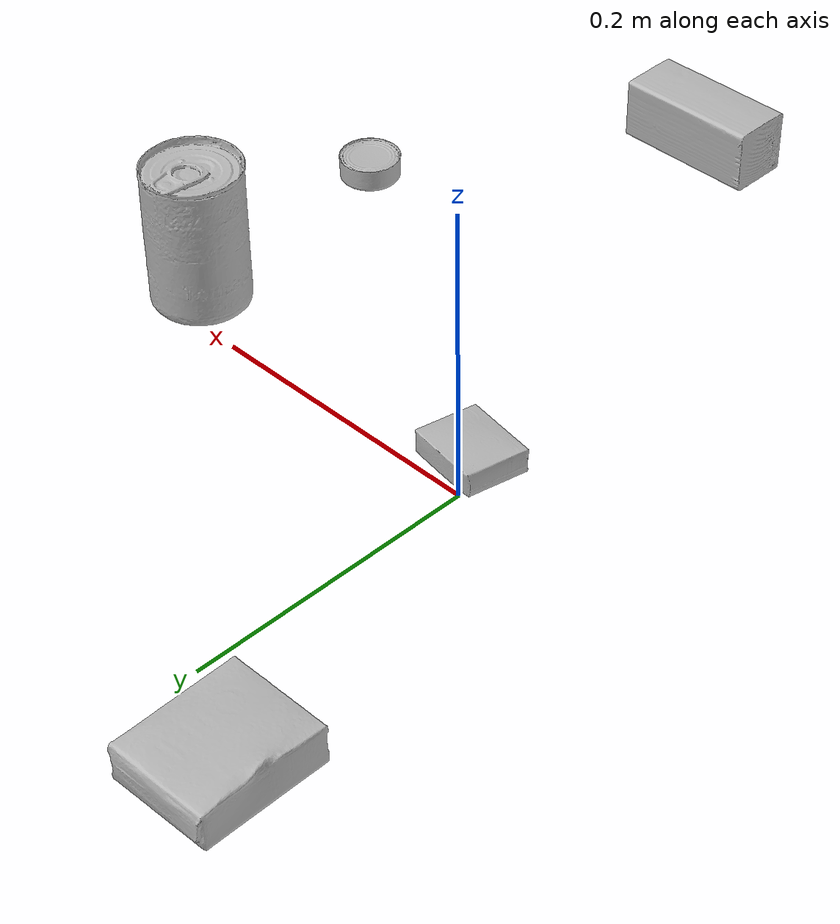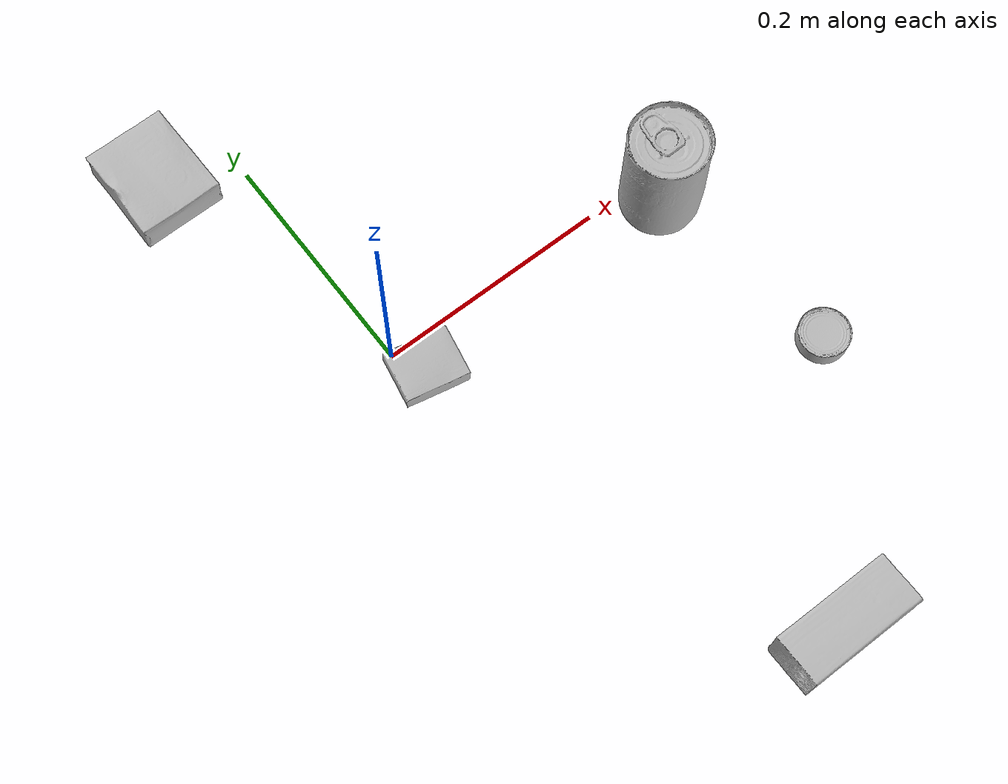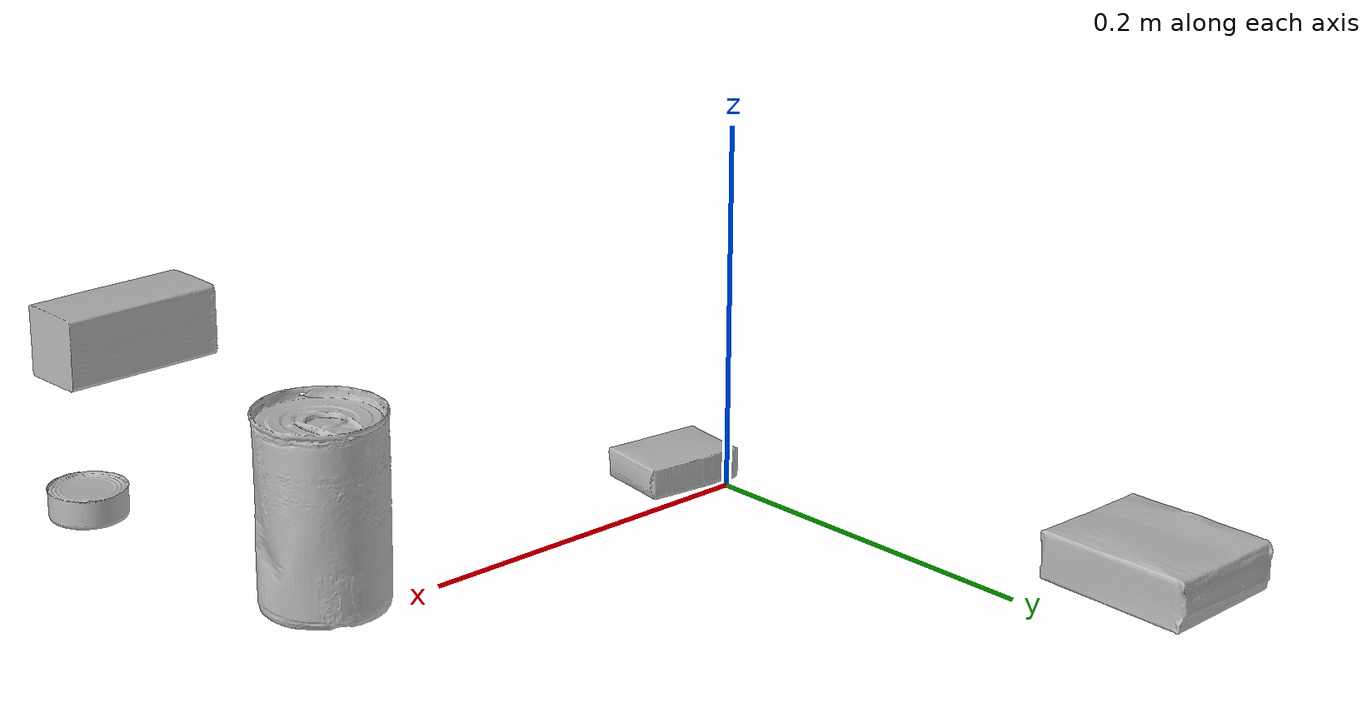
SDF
<sdf version="1.4">
  <world name="default">
    <light name="light1" type="point">
      <pose>0 0 1 0 0 0</pose>
      <diffuse>3 3 3 1</diffuse>
      <specular>3 3 3 1</specular>
    </light>
    <light name="light2" type="point">
      <pose>0 0.5 2 0 0 0</pose>
      <diffuse>1 1 1 1</diffuse>
      <specular>1 1 1 1</specular>
    </light>
    <light name="light3" type="point">
      <pose>0 0.5 2 0 0 0</pose>
      <diffuse>3 3 3 1</diffuse>
      <specular>3 3 3 1</specular>
    </light>
    <scene>
      <ambient>0.7 0.7 0.7</ambient>
    </scene>
    <model name="box1">
      <link name="link_box1">
        <collision name="default">
          <geometry>
            <mesh>
              <uri>model://pudding_box/collision_meshes/collision.obj</uri>
              <scale>0.5 0.5 0.5</scale>
            </mesh>
          </geometry>
          <surface>
            <friction>
              <ode>
                <mu>0.5</mu>
                <mu2>0.5</mu2>
              </ode>
            </friction>
          <contact>
        <ode>
            <max_vel>0</max_vel>
            <min_depth>0.0001</min_depth>
            <kp>1e8</kp>
        </ode>
    </contact></surface>
        </collision>
        <visual name="default">
          <geometry>
            <mesh>
              <uri>model://pudding_box/visual_meshes/visual.dae</uri>
              <scale>0.5 0.5 0.5</scale>
            </mesh>
          </geometry>
        </visual>
        <inertial>
          <mass>0.049221161752939224</mass>
          <pose>0.00024474109522998333 0.00040339428232982755 -0.0002594413817860186 0.005213101772454675 -0.006603800120423707 0.020079827019105066</pose>
          <inertia>
            <ixx>1.3910499e-05</ixx>
            <iyy>9.3590825e-06</iyy>
            <izz>2.0542482e-05</izz>
            <ixy>0</ixy>
            <ixz>0</ixz>
            <iyz>0</iyz>
          </inertia>
        </inertial>
      </link>
      <pose>0.015451011247932911 -0.0263728816062212 0.00986290443688631 0.022348518116829735 -0.011391735494047463 1.3880809560479108</pose>
    </model>
    <model name="box2">
      <link name="link_box2">
        <collision name="default">
          <geometry>
            <mesh>
              <uri>model://gelatin_box/collision_meshes/collision.obj</uri>
              <scale>1.0 1.0 1.0</scale>
            </mesh>
          </geometry>
          <surface>
            <friction>
              <ode>
                <mu>0.5</mu>
                <mu2>0.5</mu2>
              </ode>
            </friction>
          <contact>
        <ode>
            <max_vel>0</max_vel>
            <min_depth>0.0001</min_depth>
            <kp>1e8</kp>
        </ode>
    </contact></surface>
        </collision>
        <visual name="default">
          <geometry>
            <mesh>
              <uri>model://gelatin_box/visual_meshes/visual.dae</uri>
              <scale>1.0 1.0 1.0</scale>
            </mesh>
          </geometry>
        </visual>
        <inertial>
          <mass>0.1975366622209549</mass>
          <pose>0.000431961816502735 0.00011156871187267825 -0.00036403207923285663 -0.0010503719683328595 -0.0047558182256164224 0.016440557608480007</pose>
          <inertia>
            <ixx>0.00013944478</ixx>
            <iyy>9.960467e-05</iyy>
            <izz>0.00021226601</izz>
            <ixy>0</ixy>
            <ixz>0</ixz>
            <iyz>0</iyz>
          </inertia>
        </inertial>
      </link>
      <pose>-0.06278995424509048 0.2369919866323471 0.01516831573098898 0.005597399792576311 -0.00730447418244125 3.1399322346653538</pose>
    </model>
    <model name="box3">
      <link name="link_box3">
        <collision name="default">
          <geometry>
            <mesh>
              <uri>model://wood_block/collision_meshes/collision.obj</uri>
              <scale>0.5 0.5 0.5</scale>
            </mesh>
          </geometry>
          <surface>
            <friction>
              <ode>
                <mu>0.5</mu>
                <mu2>0.5</mu2>
              </ode>
            </friction>
          <contact>
        <ode>
            <max_vel>0</max_vel>
            <min_depth>0.0001</min_depth>
            <kp>1e8</kp>
        </ode>
    </contact></surface>
        </collision>
        <visual name="default">
          <geometry>
            <mesh>
              <uri>model://wood_block/visual_meshes/visual.dae</uri>
              <scale>0.5 0.5 0.5</scale>
            </mesh>
          </geometry>
        </visual>
        <inertial>
          <mass>0.2799808979034424</mass>
          <pose>-2.9066577553749084e-06 -0.000285404734313488 0.00013204291462898254 -0.05220811074253327 -0.005192695744074178 -0.0068613776969266935</pose>
          <inertia>
            <ixx>9.3664195e-05</ixx>
            <iyy>0.0002958853</iyy>
            <izz>0.00029477844</izz>
            <ixy>0</ixy>
            <ixz>0</ixz>
            <iyz>0</iyz>
          </inertia>
        </inertial>
      </link>
      <pose>0.13442040979862213 -0.377956360578537 0.02262927033007145 -0.005208533480245567 0.005718598180958286 -3.1365364807139158</pose>
    </model>
    <model name="can1">
      <link name="link_can1">
        <collision name="default">
          <geometry>
            <mesh>
              <uri>model://tomato_soup_can/collision_meshes/collision.obj</uri>
              <scale>1.0 1.0 1.0</scale>
            </mesh>
          </geometry>
          <surface>
            <friction>
              <ode>
                <mu>0.5</mu>
                <mu2>0.5</mu2>
              </ode>
            </friction>
          <contact>
        <ode>
            <max_vel>0</max_vel>
            <min_depth>0.0001</min_depth>
            <kp>1e8</kp>
        </ode>
    </contact></surface>
        </collision>
        <visual name="default">
          <geometry>
            <mesh>
              <uri>model://tomato_soup_can/visual_meshes/visual.dae</uri>
              <scale>1.0 1.0 1.0</scale>
            </mesh>
          </geometry>
        </visual>
        <inertial>
          <mass>0.35683923959732056</mass>
          <pose>0.00012652271834667772 0.00010805513738887385 -0.0017973982030525804 0.007020067402313596 0.00042299257688944205 -0.009903281374499336</pose>
          <inertia>
            <ixx>0.0003912439</ixx>
            <iyy>0.00038898273</iyy>
            <izz>0.00020277809</izz>
            <ixy>0</ixy>
            <ixz>0</ixz>
            <iyz>0</iyz>
          </inertia>
        </inertial>
      </link>
      <pose>0.2543133497238159 -0.020949074998497963 0.051274023950099945 -7.084009703329031e-07 -8.472671975417285e-07 2.8673872651631336</pose>
    </model>
    <model name="can2">
      <link name="link_can2">
        <collision name="default">
          <geometry>
            <mesh>
              <uri>model://tuna_fish_can/collision_meshes/collision.obj</uri>
              <scale>0.5 0.5 0.5</scale>
            </mesh>
          </geometry>
          <surface>
            <friction>
              <ode>
                <mu>0.5</mu>
                <mu2>0.5</mu2>
              </ode>
            </friction>
          <contact>
        <ode>
            <max_vel>0</max_vel>
            <min_depth>0.0001</min_depth>
            <kp>1e8</kp>
        </ode>
    </contact></surface>
        </collision>
        <visual name="default">
          <geometry>
            <mesh>
              <uri>model://tuna_fish_can/visual_meshes/visual.dae</uri>
              <scale>0.5 0.5 0.5</scale>
            </mesh>
          </geometry>
        </visual>
        <inertial>
          <mass>0.011508840136229992</mass>
          <pose>-2.0362092982395552e-05 -7.256176559167216e-06 -0.0005269026150926948 -0.0017944756095399476 0.0001716207335623094 0.24053890436657652</pose>
          <inertia>
            <ixx>1.5560124e-06</ixx>
            <iyy>1.5495272e-06</iyy>
            <izz>2.662559e-06</izz>
            <ixy>0</ixy>
            <ixz>0</ixz>
            <iyz>0</iyz>
          </inertia>
        </inertial>
      </link>
      <pose>0.27839863300323486 -0.19428719580173492 0.008519998751580715 -4.587451822305933e-08 -2.581568924342809e-08 -0.34359402441326087</pose>
    </model>
  <physics type="ode">
      <max_contacts>50</max_contacts>
      <ode>
        <solver>
          <type>quick</type>
          <iters>75</iters>
        </solver>
        <constraints>
          <contact_max_correcting_vel>0</contact_max_correcting_vel>
          <contact_surface_layer>0</contact_surface_layer>
        </constraints>
      </ode>
    </physics></world>
</sdf>
